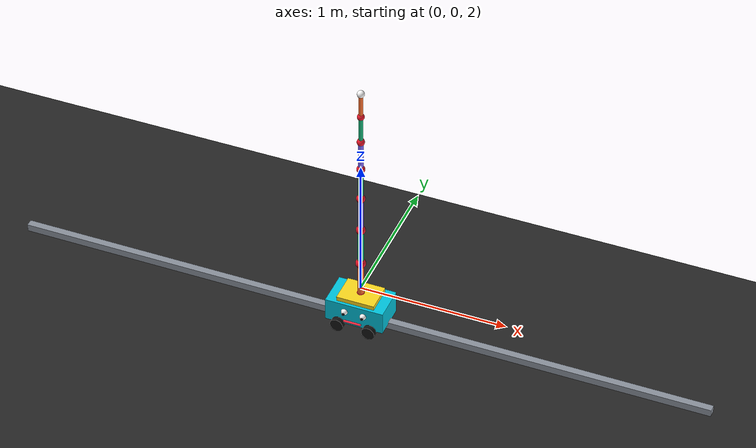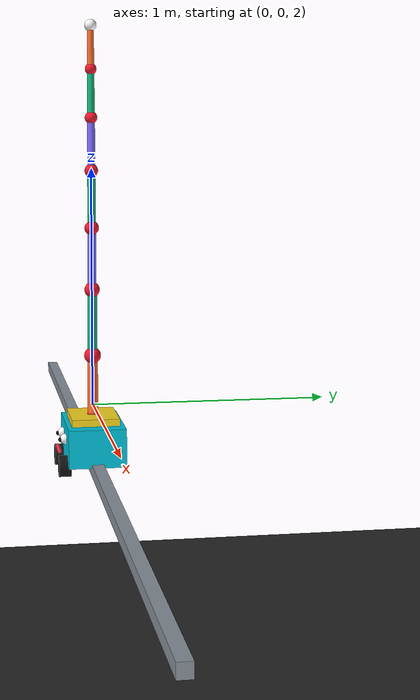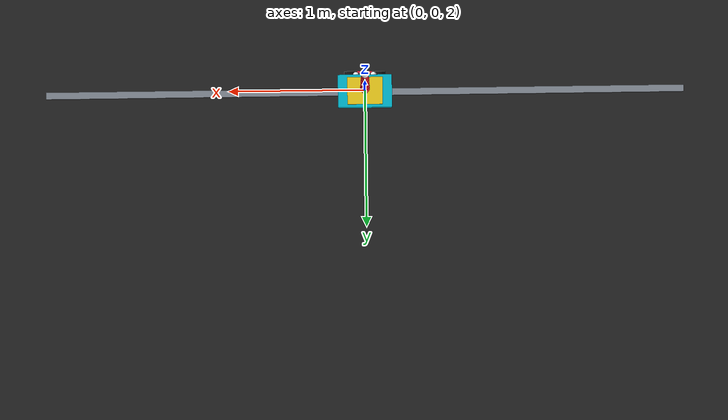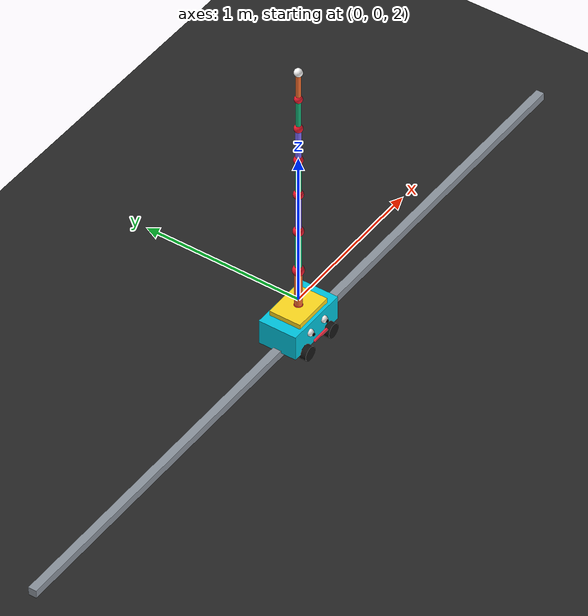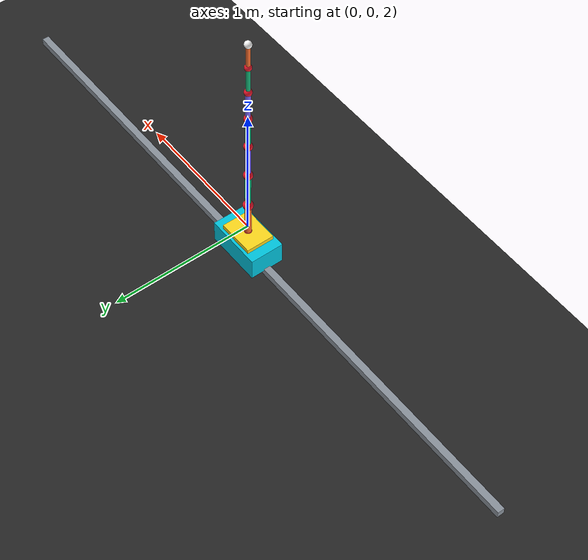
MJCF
<mujoco model="seven_pendulum_cartpole">
  <compiler angle="radian" autolimits="true"/>

  <option timestep="0.002" gravity="0 0 -9.81" integrator="RK4">
    <flag energy="enable"/>
  </option>

  <visual>
    <global offwidth="1280" offheight="720"/>
    <quality shadowsize="2048"/>
    <map force="0.2" zfar="30"/>
  </visual>

  <default>
    <joint damping="0.05" armature="0.004"/>
    <geom contype="0" conaffinity="0" friction="0.9 0.01 0.001"/>
  </default>

  <asset>
    <texture name="grid" type="2d" builtin="checker" width="512" height="512"
             rgb1="0.12 0.12 0.12" rgb2="0.18 0.18 0.18"/>
    <material name="floor" texture="grid" texrepeat="5 5" reflectance="0.15"/>
    <material name="cart" rgba="0.0 0.78 0.88 1"/>
    <material name="cart_trim" rgba="1.0 0.86 0.12 1"/>
    <material name="eye_white" rgba="1 1 1 1"/>
    <material name="eye_dark" rgba="0.02 0.02 0.03 1"/>
    <material name="smile" rgba="1.0 0.18 0.28 1"/>
    <material name="link_a" rgba="1.0 0.44 0.18 1"/>
    <material name="link_b" rgba="0.08 0.72 0.48 1"/>
    <material name="link_c" rgba="0.50 0.42 1.0 1"/>
    <material name="joint" rgba="0.95 0.1 0.18 1"/>
  </asset>

  <worldbody>
    <light pos="0 -4 5" dir="0 1 -1" diffuse="0.8 0.8 0.8"/>
    <camera name="side" pos="0 -6.2 1.9" xyaxes="1 0 0 0 0 1"/>
    <geom name="floor" type="plane" size="5 5 0.1" material="floor"/>
    <geom name="rail" type="box" pos="0 0 1.76" size="2.4 0.025 0.025"
          rgba="0.55 0.58 0.62 1" contype="0" conaffinity="0"/>

    <body name="cart" pos="0 0 1.85">
      <joint name="cart_slide" type="slide" axis="1 0 0" limited="true" range="-2.2 2.2" damping="0.08"/>
      <geom name="cart_box" type="box" size="0.20 0.12 0.08" material="cart" mass="1.0"/>
      <geom name="cart_roof" type="box" pos="0 0 0.092" size="0.13 0.10 0.018" material="cart_trim" contype="0" conaffinity="0"/>
      <geom name="left_eye_white" type="sphere" pos="-0.065 -0.123 0.02" size="0.022" material="eye_white" contype="0" conaffinity="0"/>
      <geom name="right_eye_white" type="sphere" pos="0.065 -0.123 0.02" size="0.022" material="eye_white" contype="0" conaffinity="0"/>
      <geom name="left_eye_dot" type="sphere" pos="-0.065 -0.143 0.017" size="0.010" material="eye_dark" contype="0" conaffinity="0"/>
      <geom name="right_eye_dot" type="sphere" pos="0.065 -0.143 0.017" size="0.010" material="eye_dark" contype="0" conaffinity="0"/>
      <geom name="smile_bar" type="capsule" fromto="-0.055 -0.147 -0.035 0.055 -0.147 -0.035" size="0.008" material="smile" contype="0" conaffinity="0"/>
      <geom name="left_wheel" type="cylinder" pos="-0.11 -0.13 -0.085" axisangle="1 0 0 1.5708"
            size="0.045 0.025" rgba="0.08 0.08 0.08 1"/>
      <geom name="right_wheel" type="cylinder" pos="0.11 -0.13 -0.085" axisangle="1 0 0 1.5708"
            size="0.045 0.025" rgba="0.08 0.08 0.08 1"/>

      <body name="link1" pos="0 0 0.08">
        <joint name="hinge1" type="hinge" axis="0 1 0" limited="false"/>
        <geom type="sphere" size="0.04" material="joint" mass="0.02"/>
        <geom type="capsule" fromto="0 0 0 0 0 0.28" size="0.022" material="link_a" mass="0.10"/>

        <body name="link2" pos="0 0 0.28">
          <joint name="hinge2" type="hinge" axis="0 1 0" limited="false"/>
          <geom type="sphere" size="0.035" material="joint" mass="0.015"/>
          <geom type="capsule" fromto="0 0 0 0 0 0.28" size="0.020" material="link_b" mass="0.09"/>

          <body name="link3" pos="0 0 0.28">
            <joint name="hinge3" type="hinge" axis="0 1 0" limited="false"/>
            <geom type="sphere" size="0.032" material="joint" mass="0.012"/>
            <geom type="capsule" fromto="0 0 0 0 0 0.26" size="0.018" material="link_c" mass="0.08"/>

            <body name="link4" pos="0 0 0.26">
              <joint name="hinge4" type="hinge" axis="0 1 0" limited="false"/>
              <geom type="sphere" size="0.030" material="joint" mass="0.010"/>
              <geom type="capsule" fromto="0 0 0 0 0 0.24" size="0.017" material="link_b" mass="0.07"/>

              <body name="link5" pos="0 0 0.24">
                <joint name="hinge5" type="hinge" axis="0 1 0" limited="false"/>
                <geom type="sphere" size="0.028" material="joint" mass="0.010"/>
                <geom type="capsule" fromto="0 0 0 0 0 0.22" size="0.016" material="link_c" mass="0.06"/>

                <body name="link6" pos="0 0 0.22">
                  <joint name="hinge6" type="hinge" axis="0 1 0" limited="false"/>
                  <geom type="sphere" size="0.026" material="joint" mass="0.008"/>
                  <geom type="capsule" fromto="0 0 0 0 0 0.20" size="0.015" material="link_b" mass="0.05"/>

                  <body name="link7" pos="0 0 0.20">
                    <joint name="hinge7" type="hinge" axis="0 1 0" limited="false"/>
                    <geom type="sphere" size="0.024" material="joint" mass="0.006"/>
                    <geom type="capsule" fromto="0 0 0 0 0 0.18" size="0.014" material="link_a" mass="0.04"/>
                    <site name="tip" pos="0 0 0.18" size="0.025" rgba="1 1 1 1"/>
                  </body>
                </body>
              </body>
            </body>
          </body>
        </body>
      </body>
    </body>
  </worldbody>

  <actuator>
    <motor name="cart_motor" joint="cart_slide" gear="80" ctrlrange="-1 1"/>
  </actuator>
</mujoco>
